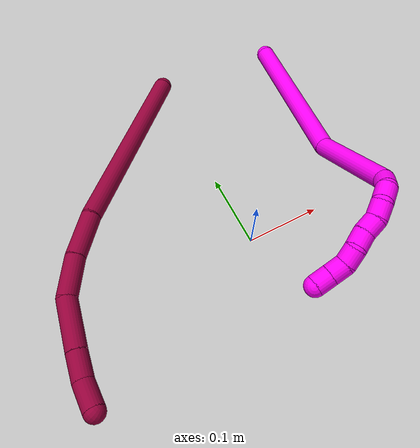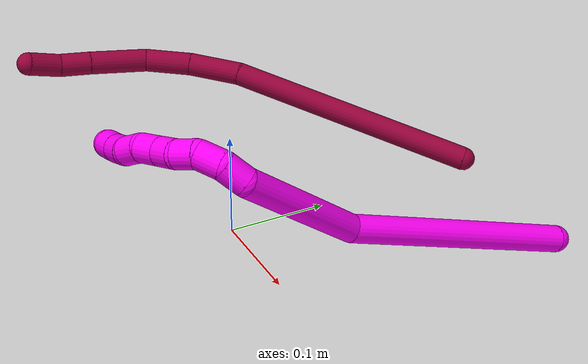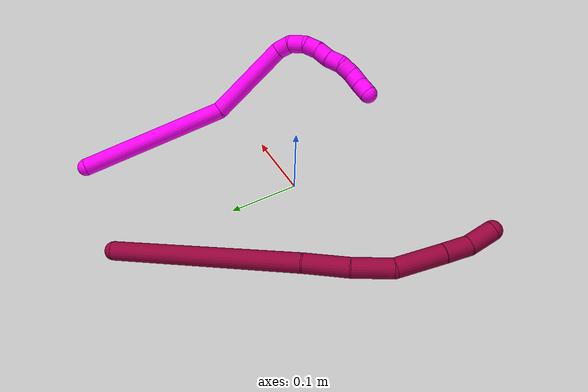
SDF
<sdf version="1.7">
 <world name="default">
  <model name="8">
   <static>0</static>
   <link name="8">
    <collision name="collision-cylinder-e_1_1_4">
     <pose>-0.087682 -0.058728 -0.077753 2.4947 -0.732735 -1.70544</pose>
     <geometry><cylinder><radius>0.0125</radius><length>0.262165</length></cylinder></geometry>
     <surface>
      <friction><ode><mu>1.16</mu><mu2>1.16</mu2><slip1>0</slip1><slip2>0</slip2></ode></friction>
      <contact><ode><kp>1e+06</kp><kd>1</kd><max_vel>0</max_vel><min_depth>0.001</min_depth></ode></contact>
     </surface>
    </collision>
    <visual name="visual-cylinder-e_1_1_4">
     <pose>-0.087682 -0.058728 -0.077753 2.4947 -0.732735 -1.70544</pose>
     <geometry><cylinder><radius>0.0125</radius><length>0.262165</length></cylinder></geometry>
     <material><ambient>0.584314 0 0.227451 1</ambient></material>
    </visual>
    <collision name="collision-cylinder-e_2_4_5">
     <pose>-0.190728 -0.132634 -0.173758 2.44785 -0.574445 -1.37023</pose>
     <geometry><cylinder><radius>0.0125</radius><length>0.056553</length></cylinder></geometry>
     <surface>
      <friction><ode><mu>1.16</mu><mu2>1.16</mu2><slip1>0</slip1><slip2>0</slip2></ode></friction>
      <contact><ode><kp>1e+06</kp><kd>1</kd><max_vel>0</max_vel><min_depth>0.001</min_depth></ode></contact>
     </surface>
    </collision>
    <visual name="visual-cylinder-e_2_4_5">
     <pose>-0.190728 -0.132634 -0.173758 2.44785 -0.574445 -1.37023</pose>
     <geometry><cylinder><radius>0.0125</radius><length>0.056553</length></cylinder></geometry>
     <material><ambient>0.584314 0 0.227451 1</ambient></material>
    </visual>
    <collision name="collision-cylinder-e_3_5_6">
     <pose>-0.217952 -0.164375 -0.207153 2.3115 -0.486123 -1.02513</pose>
     <geometry><cylinder><radius>0.0125</radius><length>0.050766</length></cylinder></geometry>
     <surface>
      <friction><ode><mu>1.16</mu><mu2>1.16</mu2><slip1>0</slip1><slip2>0</slip2></ode></friction>
      <contact><ode><kp>1e+06</kp><kd>1</kd><max_vel>0</max_vel><min_depth>0.001</min_depth></ode></contact>
     </surface>
    </collision>
    <visual name="visual-cylinder-e_3_5_6">
     <pose>-0.217952 -0.164375 -0.207153 2.3115 -0.486123 -1.02513</pose>
     <geometry><cylinder><radius>0.0125</radius><length>0.050766</length></cylinder></geometry>
     <material><ambient>0.584314 0 0.227451 1</ambient></material>
    </visual>
    <collision name="collision-cylinder-e_4_6_7">
     <pose>-0.240412 -0.208412 -0.232746 1.93419 -0.346136 -0.496561</pose>
     <geometry><cylinder><radius>0.0125</radius><length>0.062495</length></cylinder></geometry>
     <surface>
      <friction><ode><mu>1.16</mu><mu2>1.16</mu2><slip1>0</slip1><slip2>0</slip2></ode></friction>
      <contact><ode><kp>1e+06</kp><kd>1</kd><max_vel>0</max_vel><min_depth>0.001</min_depth></ode></contact>
     </surface>
    </collision>
    <visual name="visual-cylinder-e_4_6_7">
     <pose>-0.240412 -0.208412 -0.232746 1.93419 -0.346136 -0.496561</pose>
     <geometry><cylinder><radius>0.0125</radius><length>0.062495</length></cylinder></geometry>
     <material><ambient>0.584314 0 0.227451 1</ambient></material>
    </visual>
    <collision name="collision-cylinder-e_5_7_8">
     <pose>-0.256185 -0.250817 -0.248517 1.91327 -0.315348 -0.443544</pose>
     <geometry><cylinder><radius>0.0125</radius><length>0.033346</length></cylinder></geometry>
     <surface>
      <friction><ode><mu>1.16</mu><mu2>1.16</mu2><slip1>0</slip1><slip2>0</slip2></ode></friction>
      <contact><ode><kp>1e+06</kp><kd>1</kd><max_vel>0</max_vel><min_depth>0.001</min_depth></ode></contact>
     </surface>
    </collision>
    <visual name="visual-cylinder-e_5_7_8">
     <pose>-0.256185 -0.250817 -0.248517 1.91327 -0.315348 -0.443544</pose>
     <geometry><cylinder><radius>0.0125</radius><length>0.033346</length></cylinder></geometry>
     <material><ambient>0.584314 0 0.227451 1</ambient></material>
    </visual>
    <collision name="collision-cylinder-e_6_8_2">
     <pose>-0.268394 -0.281532 -0.255218 1.65789 -0.418029 -0.454868</pose>
     <geometry><cylinder><radius>0.0125</radius><length>0.034674</length></cylinder></geometry>
     <surface>
      <friction><ode><mu>1.16</mu><mu2>1.16</mu2><slip1>0</slip1><slip2>0</slip2></ode></friction>
      <contact><ode><kp>1e+06</kp><kd>1</kd><max_vel>0</max_vel><min_depth>0.001</min_depth></ode></contact>
     </surface>
    </collision>
    <visual name="visual-cylinder-e_6_8_2">
     <pose>-0.268394 -0.281532 -0.255218 1.65789 -0.418029 -0.454868</pose>
     <geometry><cylinder><radius>0.0125</radius><length>0.034674</length></cylinder></geometry>
     <material><ambient>0.584314 0 0.227451 1</ambient></material>
    </visual>
    <collision name="collision-sphere-2">
     <pose>-0.275432 -0.297316 -0.256596 0 -0 0</pose>
     <geometry><sphere><radius>0.0125</radius></sphere></geometry>
     <surface>
      <friction><ode><mu>1.16</mu><mu2>1.16</mu2><slip1>0</slip1><slip2>0</slip2></ode></friction>
      <contact><ode><kp>1e+06</kp><kd>1</kd><max_vel>0</max_vel><min_depth>0.001</min_depth></ode></contact>
     </surface>
    </collision>
    <visual name="visual-sphere-2">
     <pose>-0.275432 -0.297316 -0.256596 0 -0 0</pose>
     <geometry><sphere><radius>0.0125</radius></sphere></geometry>
     <material><ambient>0.584314 0 0.227451 1</ambient></material>
    </visual>
    <collision name="collision-sphere-4">
     <pose>-0.175364 -0.117456 -0.155507 0 -0 0</pose>
     <geometry><sphere><radius>0.0125</radius></sphere></geometry>
     <surface>
      <friction><ode><mu>1.16</mu><mu2>1.16</mu2><slip1>0</slip1><slip2>0</slip2></ode></friction>
      <contact><ode><kp>1e+06</kp><kd>1</kd><max_vel>0</max_vel><min_depth>0.001</min_depth></ode></contact>
     </surface>
    </collision>
    <visual name="visual-sphere-4">
     <pose>-0.175364 -0.117456 -0.155507 0 -0 0</pose>
     <geometry><sphere><radius>0.0125</radius></sphere></geometry>
     <material><ambient>0.584314 0 0.227451 1</ambient></material>
    </visual>
    <collision name="collision-sphere-1">
     <geometry><sphere><radius>0.0125</radius></sphere></geometry>
     <surface>
      <friction><ode><mu>1.16</mu><mu2>1.16</mu2><slip1>0</slip1><slip2>0</slip2></ode></friction>
      <contact><ode><kp>1e+06</kp><kd>1</kd><max_vel>0</max_vel><min_depth>0.001</min_depth></ode></contact>
     </surface>
    </collision>
    <visual name="visual-sphere-1">
     <geometry><sphere><radius>0.0125</radius></sphere></geometry>
     <material><ambient>0.584314 0 0.227451 1</ambient></material>
    </visual>
    <collision name="collision-sphere-8">
     <pose>-0.261356 -0.265748 -0.25384 0 -0 0</pose>
     <geometry><sphere><radius>0.0125</radius></sphere></geometry>
     <surface>
      <friction><ode><mu>1.16</mu><mu2>1.16</mu2><slip1>0</slip1><slip2>0</slip2></ode></friction>
      <contact><ode><kp>1e+06</kp><kd>1</kd><max_vel>0</max_vel><min_depth>0.001</min_depth></ode></contact>
     </surface>
    </collision>
    <visual name="visual-sphere-8">
     <pose>-0.261356 -0.265748 -0.25384 0 -0 0</pose>
     <geometry><sphere><radius>0.0125</radius></sphere></geometry>
     <material><ambient>0.584314 0 0.227451 1</ambient></material>
    </visual>
    <collision name="collision-sphere-5">
     <pose>-0.206093 -0.147813 -0.192009 0 -0 0</pose>
     <geometry><sphere><radius>0.0125</radius></sphere></geometry>
     <surface>
      <friction><ode><mu>1.16</mu><mu2>1.16</mu2><slip1>0</slip1><slip2>0</slip2></ode></friction>
      <contact><ode><kp>1e+06</kp><kd>1</kd><max_vel>0</max_vel><min_depth>0.001</min_depth></ode></contact>
     </surface>
    </collision>
    <visual name="visual-sphere-5">
     <pose>-0.206093 -0.147813 -0.192009 0 -0 0</pose>
     <geometry><sphere><radius>0.0125</radius></sphere></geometry>
     <material><ambient>0.584314 0 0.227451 1</ambient></material>
    </visual>
    <collision name="collision-sphere-6">
     <pose>-0.229811 -0.180937 -0.222298 0 -0 0</pose>
     <geometry><sphere><radius>0.0125</radius></sphere></geometry>
     <surface>
      <friction><ode><mu>1.16</mu><mu2>1.16</mu2><slip1>0</slip1><slip2>0</slip2></ode></friction>
      <contact><ode><kp>1e+06</kp><kd>1</kd><max_vel>0</max_vel><min_depth>0.001</min_depth></ode></contact>
     </surface>
    </collision>
    <visual name="visual-sphere-6">
     <pose>-0.229811 -0.180937 -0.222298 0 -0 0</pose>
     <geometry><sphere><radius>0.0125</radius></sphere></geometry>
     <material><ambient>0.584314 0 0.227451 1</ambient></material>
    </visual>
    <collision name="collision-sphere-7">
     <pose>-0.251013 -0.235887 -0.243194 0 -0 0</pose>
     <geometry><sphere><radius>0.0125</radius></sphere></geometry>
     <surface>
      <friction><ode><mu>1.16</mu><mu2>1.16</mu2><slip1>0</slip1><slip2>0</slip2></ode></friction>
      <contact><ode><kp>1e+06</kp><kd>1</kd><max_vel>0</max_vel><min_depth>0.001</min_depth></ode></contact>
     </surface>
    </collision>
    <visual name="visual-sphere-7">
     <pose>-0.251013 -0.235887 -0.243194 0 -0 0</pose>
     <geometry><sphere><radius>0.0125</radius></sphere></geometry>
     <material><ambient>0.584314 0 0.227451 1</ambient></material>
    </visual>
    <inertial>
     <pose>-0.155423 -0.124785 -0.144818 0 -0 0</pose>
     <mass>0.5</mass>
     <inertia>
      <ixx>-0.001289</ixx>
      <ixy>0</ixy>
      <ixz>0</ixz>
      <iyy>-0.00041</iyy>
      <iyz>0</iyz>
      <izz>0.001741</izz>
     </inertia>
    </inertial>
   </link>
   <pose>0.002651 0.273125 0.012321 0.144228 1.04036 0.407587</pose>
  </model>
  <model name="10">
   <static>0</static>
   <link name="10">
    <collision name="collision-cylinder-e_1_1_4">
     <pose>-0.035142 -0.082313 0.057237 0.963194 -0.337138 -0.177424</pose>
     <geometry><cylinder><radius>0.0125</radius><length>0.212477</length></cylinder></geometry>
     <surface>
      <friction><ode><mu>1.16</mu><mu2>1.16</mu2><slip1>0</slip1><slip2>0</slip2></ode></friction>
      <contact><ode><kp>1e+06</kp><kd>1</kd><max_vel>0</max_vel><min_depth>0.001</min_depth></ode></contact>
     </surface>
    </collision>
    <visual name="visual-cylinder-e_1_1_4">
     <pose>-0.035142 -0.082313 0.057237 0.963194 -0.337138 -0.177424</pose>
     <geometry><cylinder><radius>0.0125</radius><length>0.212477</length></cylinder></geometry>
     <material><ambient>1 0 0.964706 1</ambient></material>
    </visual>
    <collision name="collision-cylinder-e_2_4_5">
     <pose>-0.068945 -0.205928 0.15974 0.739626 0.021864 0.008476</pose>
     <geometry><cylinder><radius>0.0125</radius><length>0.122582</length></cylinder></geometry>
     <surface>
      <friction><ode><mu>1.16</mu><mu2>1.16</mu2><slip1>0</slip1><slip2>0</slip2></ode></friction>
      <contact><ode><kp>1e+06</kp><kd>1</kd><max_vel>0</max_vel><min_depth>0.001</min_depth></ode></contact>
     </surface>
    </collision>
    <visual name="visual-cylinder-e_2_4_5">
     <pose>-0.068945 -0.205928 0.15974 0.739626 0.021864 0.008476</pose>
     <geometry><cylinder><radius>0.0125</radius><length>0.122582</length></cylinder></geometry>
     <material><ambient>1 0 0.964706 1</ambient></material>
    </visual>
    <collision name="collision-cylinder-e_3_5_6">
     <pose>-0.071178 -0.250745 0.214674 0.348862 -0.334304 -0.059449</pose>
     <geometry><cylinder><radius>0.0125</radius><length>0.021779</length></cylinder></geometry>
     <surface>
      <friction><ode><mu>1.16</mu><mu2>1.16</mu2><slip1>0</slip1><slip2>0</slip2></ode></friction>
      <contact><ode><kp>1e+06</kp><kd>1</kd><max_vel>0</max_vel><min_depth>0.001</min_depth></ode></contact>
     </surface>
    </collision>
    <visual name="visual-cylinder-e_3_5_6">
     <pose>-0.071178 -0.250745 0.214674 0.348862 -0.334304 -0.059449</pose>
     <geometry><cylinder><radius>0.0125</radius><length>0.021779</length></cylinder></geometry>
     <material><ambient>1 0 0.964706 1</ambient></material>
    </visual>
    <collision name="collision-cylinder-e_4_6_7">
     <pose>-0.082929 -0.256713 0.231819 0.316752 -0.804617 -0.135713</pose>
     <geometry><cylinder><radius>0.0125</radius><length>0.0227</length></cylinder></geometry>
     <surface>
      <friction><ode><mu>1.16</mu><mu2>1.16</mu2><slip1>0</slip1><slip2>0</slip2></ode></friction>
      <contact><ode><kp>1e+06</kp><kd>1</kd><max_vel>0</max_vel><min_depth>0.001</min_depth></ode></contact>
     </surface>
    </collision>
    <visual name="visual-cylinder-e_4_6_7">
     <pose>-0.082929 -0.256713 0.231819 0.316752 -0.804617 -0.135713</pose>
     <geometry><cylinder><radius>0.0125</radius><length>0.0227</length></cylinder></geometry>
     <material><ambient>1 0 0.964706 1</ambient></material>
    </visual>
    <collision name="collision-cylinder-e_5_7_8">
     <pose>-0.100388 -0.261839 0.242009 0.778535 -1.18139 -0.536849</pose>
     <geometry><cylinder><radius>0.0125</radius><length>0.020064</length></cylinder></geometry>
     <surface>
      <friction><ode><mu>1.16</mu><mu2>1.16</mu2><slip1>0</slip1><slip2>0</slip2></ode></friction>
      <contact><ode><kp>1e+06</kp><kd>1</kd><max_vel>0</max_vel><min_depth>0.001</min_depth></ode></contact>
     </surface>
    </collision>
    <visual name="visual-cylinder-e_5_7_8">
     <pose>-0.100388 -0.261839 0.242009 0.778535 -1.18139 -0.536849</pose>
     <geometry><cylinder><radius>0.0125</radius><length>0.020064</length></cylinder></geometry>
     <material><ambient>1 0 0.964706 1</ambient></material>
    </visual>
    <collision name="collision-cylinder-e_6_8_9">
     <pose>-0.119389 -0.263734 0.246994 -0.330364 -1.3284 0.25954</pose>
     <geometry><cylinder><radius>0.0125</radius><length>0.020025</length></cylinder></geometry>
     <surface>
      <friction><ode><mu>1.16</mu><mu2>1.16</mu2><slip1>0</slip1><slip2>0</slip2></ode></friction>
      <contact><ode><kp>1e+06</kp><kd>1</kd><max_vel>0</max_vel><min_depth>0.001</min_depth></ode></contact>
     </surface>
    </collision>
    <visual name="visual-cylinder-e_6_8_9">
     <pose>-0.119389 -0.263734 0.246994 -0.330364 -1.3284 0.25954</pose>
     <geometry><cylinder><radius>0.0125</radius><length>0.020025</length></cylinder></geometry>
     <material><ambient>1 0 0.964706 1</ambient></material>
    </visual>
    <collision name="collision-cylinder-e_7_9_10">
     <pose>-0.138422 -0.26417 0.252926 0.320706 -1.17824 -0.215342</pose>
     <geometry><cylinder><radius>0.0125</radius><length>0.020159</length></cylinder></geometry>
     <surface>
      <friction><ode><mu>1.16</mu><mu2>1.16</mu2><slip1>0</slip1><slip2>0</slip2></ode></friction>
      <contact><ode><kp>1e+06</kp><kd>1</kd><max_vel>0</max_vel><min_depth>0.001</min_depth></ode></contact>
     </surface>
    </collision>
    <visual name="visual-cylinder-e_7_9_10">
     <pose>-0.138422 -0.26417 0.252926 0.320706 -1.17824 -0.215342</pose>
     <geometry><cylinder><radius>0.0125</radius><length>0.020159</length></cylinder></geometry>
     <material><ambient>1 0 0.964706 1</ambient></material>
    </visual>
    <collision name="collision-cylinder-e_8_10_11">
     <pose>-0.15775 -0.266145 0.25685 1.23545 -1.49062 -1.16072</pose>
     <geometry><cylinder><radius>0.0125</radius><length>0.020097</length></cylinder></geometry>
     <surface>
      <friction><ode><mu>1.16</mu><mu2>1.16</mu2><slip1>0</slip1><slip2>0</slip2></ode></friction>
      <contact><ode><kp>1e+06</kp><kd>1</kd><max_vel>0</max_vel><min_depth>0.001</min_depth></ode></contact>
     </surface>
    </collision>
    <visual name="visual-cylinder-e_8_10_11">
     <pose>-0.15775 -0.266145 0.25685 1.23545 -1.49062 -1.16072</pose>
     <geometry><cylinder><radius>0.0125</radius><length>0.020097</length></cylinder></geometry>
     <material><ambient>1 0 0.964706 1</ambient></material>
    </visual>
    <collision name="collision-cylinder-e_9_11_12">
     <pose>-0.177296 -0.264086 0.258325 -1.16543 -1.25943 0.895429</pose>
     <geometry><cylinder><radius>0.0125</radius><length>0.020022</length></cylinder></geometry>
     <surface>
      <friction><ode><mu>1.16</mu><mu2>1.16</mu2><slip1>0</slip1><slip2>0</slip2></ode></friction>
      <contact><ode><kp>1e+06</kp><kd>1</kd><max_vel>0</max_vel><min_depth>0.001</min_depth></ode></contact>
     </surface>
    </collision>
    <visual name="visual-cylinder-e_9_11_12">
     <pose>-0.177296 -0.264086 0.258325 -1.16543 -1.25943 0.895429</pose>
     <geometry><cylinder><radius>0.0125</radius><length>0.020022</length></cylinder></geometry>
     <material><ambient>1 0 0.964706 1</ambient></material>
    </visual>
    <collision name="collision-cylinder-e_10_12_2">
     <pose>-0.19622 -0.258368 0.261608 -0.950026 -1.20801 0.682023</pose>
     <geometry><cylinder><radius>0.0125</radius><length>0.020095</length></cylinder></geometry>
     <surface>
      <friction><ode><mu>1.16</mu><mu2>1.16</mu2><slip1>0</slip1><slip2>0</slip2></ode></friction>
      <contact><ode><kp>1e+06</kp><kd>1</kd><max_vel>0</max_vel><min_depth>0.001</min_depth></ode></contact>
     </surface>
    </collision>
    <visual name="visual-cylinder-e_10_12_2">
     <pose>-0.19622 -0.258368 0.261608 -0.950026 -1.20801 0.682023</pose>
     <geometry><cylinder><radius>0.0125</radius><length>0.020095</length></cylinder></geometry>
     <material><ambient>1 0 0.964706 1</ambient></material>
    </visual>
    <collision name="collision-sphere-2">
     <pose>-0.205613 -0.255467 0.263682 0 -0 0</pose>
     <geometry><sphere><radius>0.0125</radius></sphere></geometry>
     <surface>
      <friction><ode><mu>1.16</mu><mu2>1.16</mu2><slip1>0</slip1><slip2>0</slip2></ode></friction>
      <contact><ode><kp>1e+06</kp><kd>1</kd><max_vel>0</max_vel><min_depth>0.001</min_depth></ode></contact>
     </surface>
    </collision>
    <visual name="visual-sphere-2">
     <pose>-0.205613 -0.255467 0.263682 0 -0 0</pose>
     <geometry><sphere><radius>0.0125</radius></sphere></geometry>
     <material><ambient>1 0 0.964706 1</ambient></material>
    </visual>
    <collision name="collision-sphere-12">
     <pose>-0.186826 -0.261268 0.259534 0 -0 0</pose>
     <geometry><sphere><radius>0.0125</radius></sphere></geometry>
     <surface>
      <friction><ode><mu>1.16</mu><mu2>1.16</mu2><slip1>0</slip1><slip2>0</slip2></ode></friction>
      <contact><ode><kp>1e+06</kp><kd>1</kd><max_vel>0</max_vel><min_depth>0.001</min_depth></ode></contact>
     </surface>
    </collision>
    <visual name="visual-sphere-12">
     <pose>-0.186826 -0.261268 0.259534 0 -0 0</pose>
     <geometry><sphere><radius>0.0125</radius></sphere></geometry>
     <material><ambient>1 0 0.964706 1</ambient></material>
    </visual>
    <collision name="collision-sphere-11">
     <pose>-0.167767 -0.266905 0.257115 0 -0 0</pose>
     <geometry><sphere><radius>0.0125</radius></sphere></geometry>
     <surface>
      <friction><ode><mu>1.16</mu><mu2>1.16</mu2><slip1>0</slip1><slip2>0</slip2></ode></friction>
      <contact><ode><kp>1e+06</kp><kd>1</kd><max_vel>0</max_vel><min_depth>0.001</min_depth></ode></contact>
     </surface>
    </collision>
    <visual name="visual-sphere-11">
     <pose>-0.167767 -0.266905 0.257115 0 -0 0</pose>
     <geometry><sphere><radius>0.0125</radius></sphere></geometry>
     <material><ambient>1 0 0.964706 1</ambient></material>
    </visual>
    <collision name="collision-sphere-10">
     <pose>-0.147734 -0.265385 0.256586 0 -0 0</pose>
     <geometry><sphere><radius>0.0125</radius></sphere></geometry>
     <surface>
      <friction><ode><mu>1.16</mu><mu2>1.16</mu2><slip1>0</slip1><slip2>0</slip2></ode></friction>
      <contact><ode><kp>1e+06</kp><kd>1</kd><max_vel>0</max_vel><min_depth>0.001</min_depth></ode></contact>
     </surface>
    </collision>
    <visual name="visual-sphere-10">
     <pose>-0.147734 -0.265385 0.256586 0 -0 0</pose>
     <geometry><sphere><radius>0.0125</radius></sphere></geometry>
     <material><ambient>1 0 0.964706 1</ambient></material>
    </visual>
    <collision name="collision-sphere-9">
     <pose>-0.129109 -0.262954 0.249267 0 -0 0</pose>
     <geometry><sphere><radius>0.0125</radius></sphere></geometry>
     <surface>
      <friction><ode><mu>1.16</mu><mu2>1.16</mu2><slip1>0</slip1><slip2>0</slip2></ode></friction>
      <contact><ode><kp>1e+06</kp><kd>1</kd><max_vel>0</max_vel><min_depth>0.001</min_depth></ode></contact>
     </surface>
    </collision>
    <visual name="visual-sphere-9">
     <pose>-0.129109 -0.262954 0.249267 0 -0 0</pose>
     <geometry><sphere><radius>0.0125</radius></sphere></geometry>
     <material><ambient>1 0 0.964706 1</ambient></material>
    </visual>
    <collision name="collision-sphere-4">
     <pose>-0.070284 -0.164627 0.114474 0 -0 0</pose>
     <geometry><sphere><radius>0.0125</radius></sphere></geometry>
     <surface>
      <friction><ode><mu>1.16</mu><mu2>1.16</mu2><slip1>0</slip1><slip2>0</slip2></ode></friction>
      <contact><ode><kp>1e+06</kp><kd>1</kd><max_vel>0</max_vel><min_depth>0.001</min_depth></ode></contact>
     </surface>
    </collision>
    <visual name="visual-sphere-4">
     <pose>-0.070284 -0.164627 0.114474 0 -0 0</pose>
     <geometry><sphere><radius>0.0125</radius></sphere></geometry>
     <material><ambient>1 0 0.964706 1</ambient></material>
    </visual>
    <collision name="collision-sphere-1">
     <geometry><sphere><radius>0.0125</radius></sphere></geometry>
     <surface>
      <friction><ode><mu>1.16</mu><mu2>1.16</mu2><slip1>0</slip1><slip2>0</slip2></ode></friction>
      <contact><ode><kp>1e+06</kp><kd>1</kd><max_vel>0</max_vel><min_depth>0.001</min_depth></ode></contact>
     </surface>
    </collision>
    <visual name="visual-sphere-1">
     <geometry><sphere><radius>0.0125</radius></sphere></geometry>
     <material><ambient>1 0 0.964706 1</ambient></material>
    </visual>
    <collision name="collision-sphere-8">
     <pose>-0.109669 -0.264513 0.24472 0 -0 0</pose>
     <geometry><sphere><radius>0.0125</radius></sphere></geometry>
     <surface>
      <friction><ode><mu>1.16</mu><mu2>1.16</mu2><slip1>0</slip1><slip2>0</slip2></ode></friction>
      <contact><ode><kp>1e+06</kp><kd>1</kd><max_vel>0</max_vel><min_depth>0.001</min_depth></ode></contact>
     </surface>
    </collision>
    <visual name="visual-sphere-8">
     <pose>-0.109669 -0.264513 0.24472 0 -0 0</pose>
     <geometry><sphere><radius>0.0125</radius></sphere></geometry>
     <material><ambient>1 0 0.964706 1</ambient></material>
    </visual>
    <collision name="collision-sphere-5">
     <pose>-0.067605 -0.247229 0.205006 0 -0 0</pose>
     <geometry><sphere><radius>0.0125</radius></sphere></geometry>
     <surface>
      <friction><ode><mu>1.16</mu><mu2>1.16</mu2><slip1>0</slip1><slip2>0</slip2></ode></friction>
      <contact><ode><kp>1e+06</kp><kd>1</kd><max_vel>0</max_vel><min_depth>0.001</min_depth></ode></contact>
     </surface>
    </collision>
    <visual name="visual-sphere-5">
     <pose>-0.067605 -0.247229 0.205006 0 -0 0</pose>
     <geometry><sphere><radius>0.0125</radius></sphere></geometry>
     <material><ambient>1 0 0.964706 1</ambient></material>
    </visual>
    <collision name="collision-sphere-6">
     <pose>-0.074751 -0.254262 0.224341 0 -0 0</pose>
     <geometry><sphere><radius>0.0125</radius></sphere></geometry>
     <surface>
      <friction><ode><mu>1.16</mu><mu2>1.16</mu2><slip1>0</slip1><slip2>0</slip2></ode></friction>
      <contact><ode><kp>1e+06</kp><kd>1</kd><max_vel>0</max_vel><min_depth>0.001</min_depth></ode></contact>
     </surface>
    </collision>
    <visual name="visual-sphere-6">
     <pose>-0.074751 -0.254262 0.224341 0 -0 0</pose>
     <geometry><sphere><radius>0.0125</radius></sphere></geometry>
     <material><ambient>1 0 0.964706 1</ambient></material>
    </visual>
    <collision name="collision-sphere-7">
     <pose>-0.091107 -0.259164 0.239297 0 -0 0</pose>
     <geometry><sphere><radius>0.0125</radius></sphere></geometry>
     <surface>
      <friction><ode><mu>1.16</mu><mu2>1.16</mu2><slip1>0</slip1><slip2>0</slip2></ode></friction>
      <contact><ode><kp>1e+06</kp><kd>1</kd><max_vel>0</max_vel><min_depth>0.001</min_depth></ode></contact>
     </surface>
    </collision>
    <visual name="visual-sphere-7">
     <pose>-0.091107 -0.259164 0.239297 0 -0 0</pose>
     <geometry><sphere><radius>0.0125</radius></sphere></geometry>
     <material><ambient>1 0 0.964706 1</ambient></material>
    </visual>
    <inertial>
     <pose>-0.074419 -0.171419 0.144344 0 -0 0</pose>
     <mass>0.5</mass>
     <inertia>
      <ixx>0.000764</ixx>
      <ixy>0</ixy>
      <ixz>0</ixz>
      <iyy>0.000468</iyy>
      <iyz>0</iyz>
      <izz>0.001028</izz>
     </inertia>
    </inertial>
   </link>
   <pose>0.169205 0.254123 0.01329 0.117442 -0.4795 0.369746</pose>
  </model>
 </world>
</sdf>
